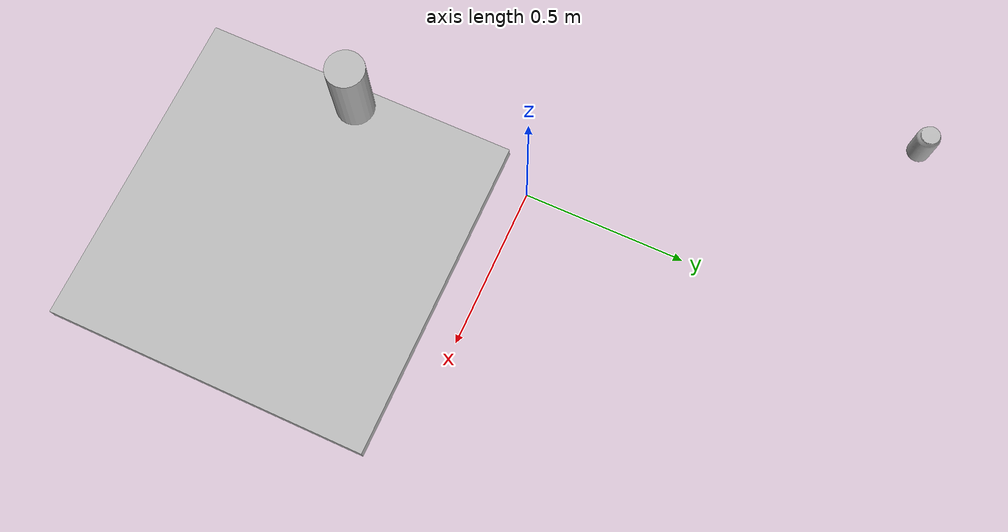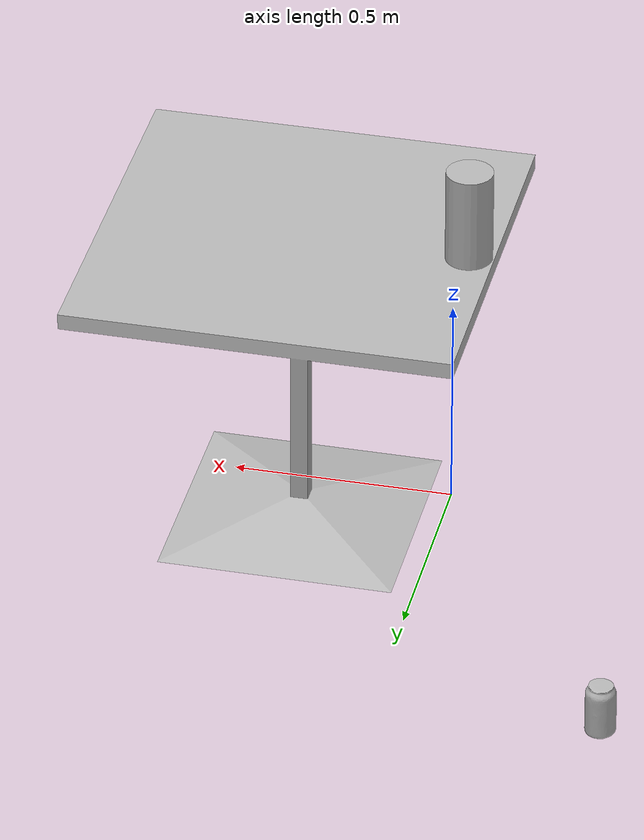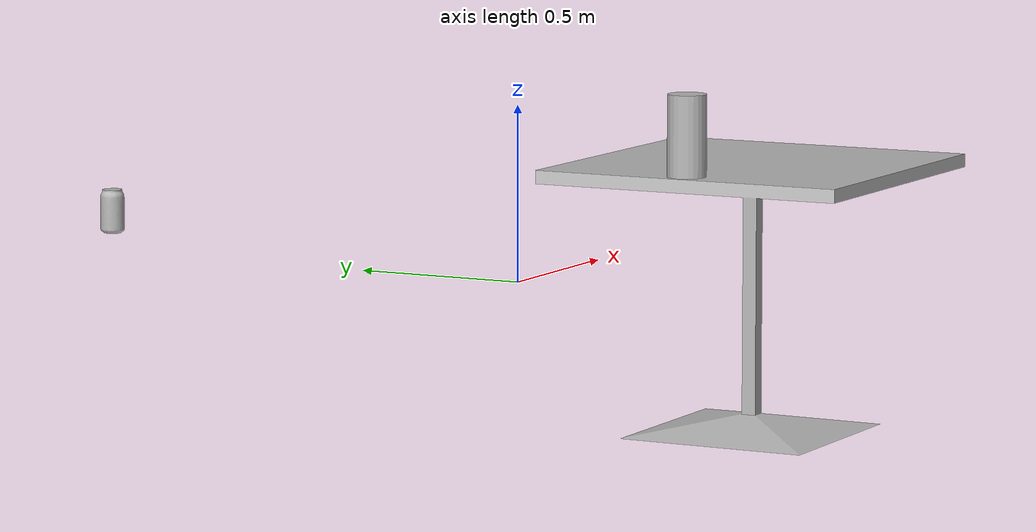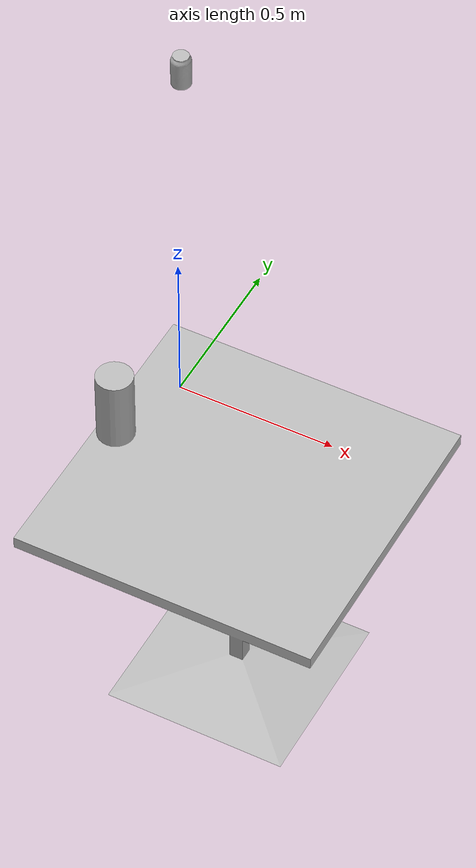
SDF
<?xml version='1.0'?>
<sdf version='1.7'>
  <model name='harco_coke'>
    <model name='beer'>
      <link name='link'>
        <pose>0 0 0.115 0 -0 0</pose>
        <inertial>
          <mass>0.39</mass>
          <inertia>
            <ixx>0.00058</ixx>
            <ixy>0</ixy>
            <ixz>0</ixz>
            <iyy>0.00058</iyy>
            <iyz>0</iyz>
            <izz>0.00019</izz>
          </inertia>
        </inertial>
        <collision name='collision'>
          <geometry>
            <cylinder>
              <radius>0.055</radius>
              <length>0.23</length>
            </cylinder>
          </geometry>
        </collision>
        <visual name='visual'>
          <geometry>
            <cylinder>
              <radius>0.055</radius>
              <length>0.23</length>
            </cylinder>
          </geometry>
          <material>
            <script>
              <uri>model://beer/materials/scripts</uri>
              <uri>model://beer/materials/textures</uri>
              <name>Beer/Diffuse</name>
            </script>
          </material>
        </visual>
      </link>
      <pose>0.0682 -0.49254 0.318837 0 -0 0</pose>
    </model>
    <model name='cafe_table'>
      <static>1</static>
      <link name='link'>
        <collision name='surface'>
          <pose>0 0 0.755 0 -0 0</pose>
          <geometry>
            <box>
              <size>0.913 0.913 0.04</size>
            </box>
          </geometry>
        </collision>
        <collision name='column'>
          <pose>0 0 0.37 0 -0 0</pose>
          <geometry>
            <box>
              <size>0.042 0.042 0.74</size>
            </box>
          </geometry>
        </collision>
        <collision name='base'>
          <pose>0 0 0.02 0 -0 0</pose>
          <geometry>
            <box>
              <size>0.56 0.56 0.04</size>
            </box>
          </geometry>
        </collision>
        <visual name='visual'>
          <geometry>
            <mesh>
              <uri>model://cafe_table/meshes/cafe_table.dae</uri>
            </mesh>
          </geometry>
        </visual>
      </link>
      <pose>0.467341 -0.507449 -0.456806 0 -0 0</pose>
    </model>
    <model name='coke_can'>
      <link name='link'>
        <inertial>
          <pose>0 0 0.06 0 -0 0</pose>
          <mass>0.39</mass>
          <inertia>
            <ixx>0.00055575</ixx>
            <ixy>0</ixy>
            <ixz>0</ixz>
            <iyy>0.00055575</iyy>
            <iyz>0</iyz>
            <izz>0.0001755</izz>
          </inertia>
        </inertial>
        <collision name='collision'>
          <pose>0.003937 0.004724 -0.18 0 -0 0</pose>
          <geometry>
            <mesh>
              <uri>model://coke_can/meshes/coke_can.dae</uri>
            </mesh>
          </geometry>
          <surface>
            <friction>
              <ode>
                <mu>1</mu>
                <mu2>1</mu2>
              </ode>
            </friction>
            <contact>
              <ode>
                <kp>1e+07</kp>
                <kd>1</kd>
                <min_depth>0.001</min_depth>
                <max_vel>0.1</max_vel>
              </ode>
            </contact>
          </surface>
        </collision>
        <visual name='visual'>
          <pose>0.003937 0.004724 -0.18 0 -0 0</pose>
          <geometry>
            <mesh>
              <uri>model://coke_can/meshes/coke_can.dae</uri>
            </mesh>
          </geometry>
        </visual>
      </link>
      <pose>-0.535548 0.99999 0.137968 0 -0 0</pose>
    </model>
    <static>0</static>
    <allow_auto_disable>1</allow_auto_disable>
  </model>
</sdf>
